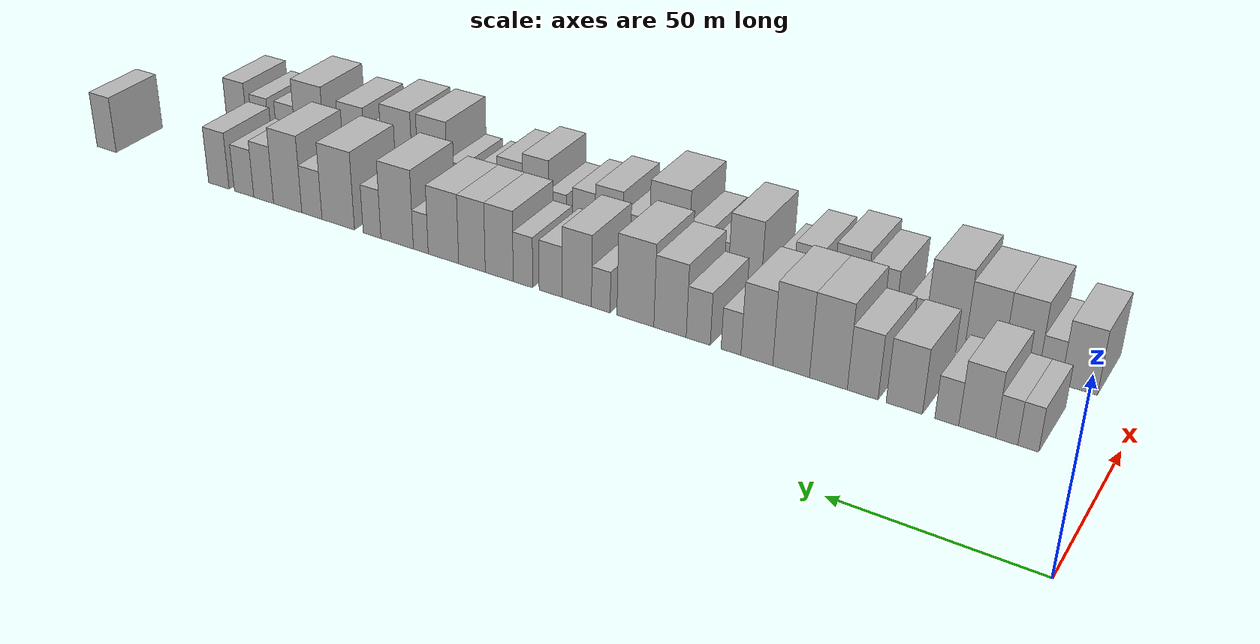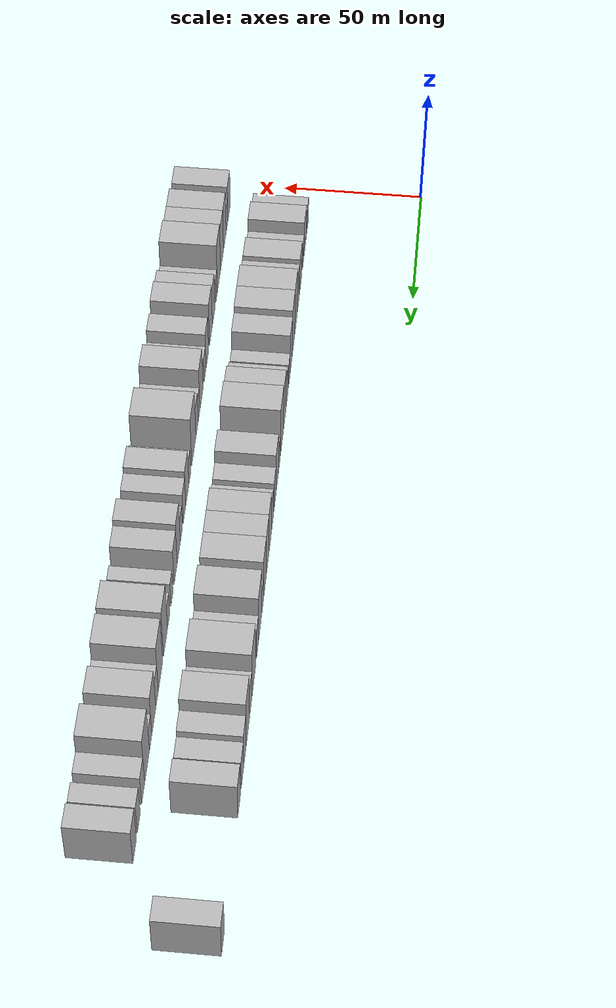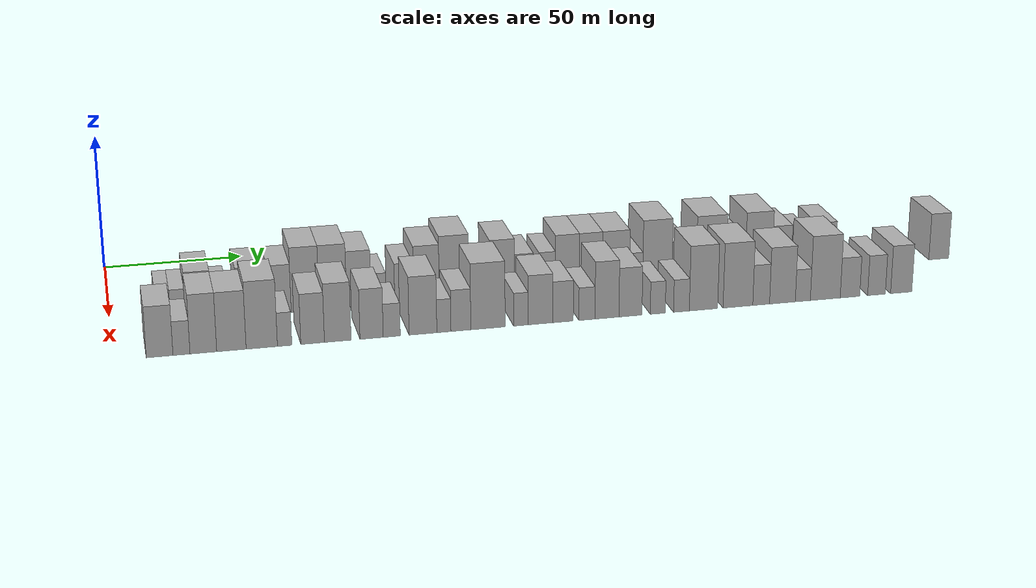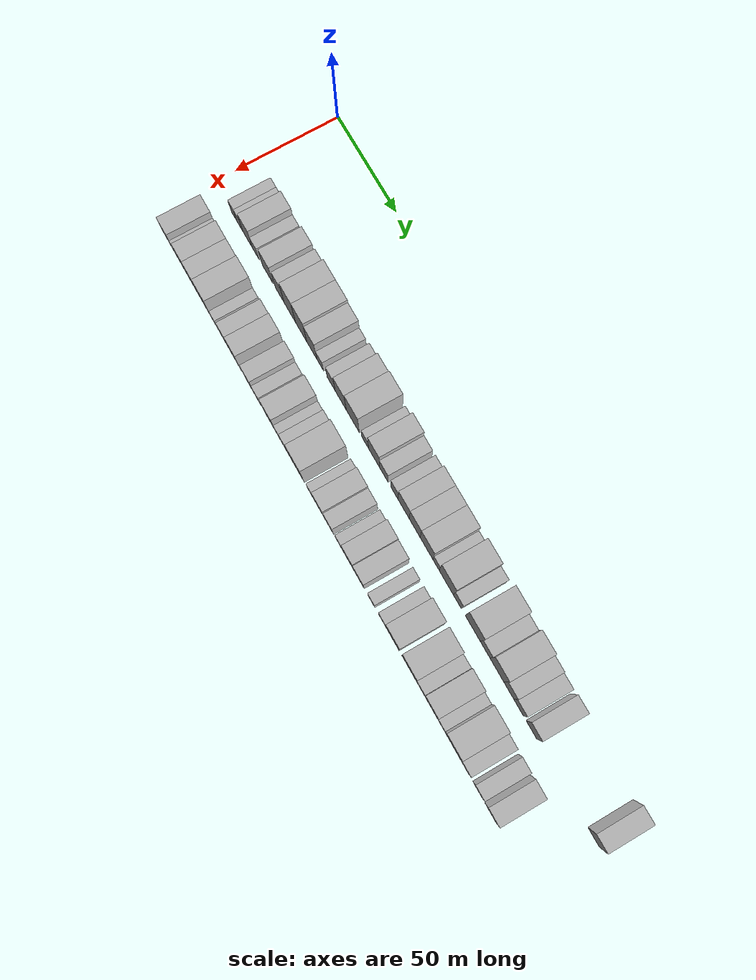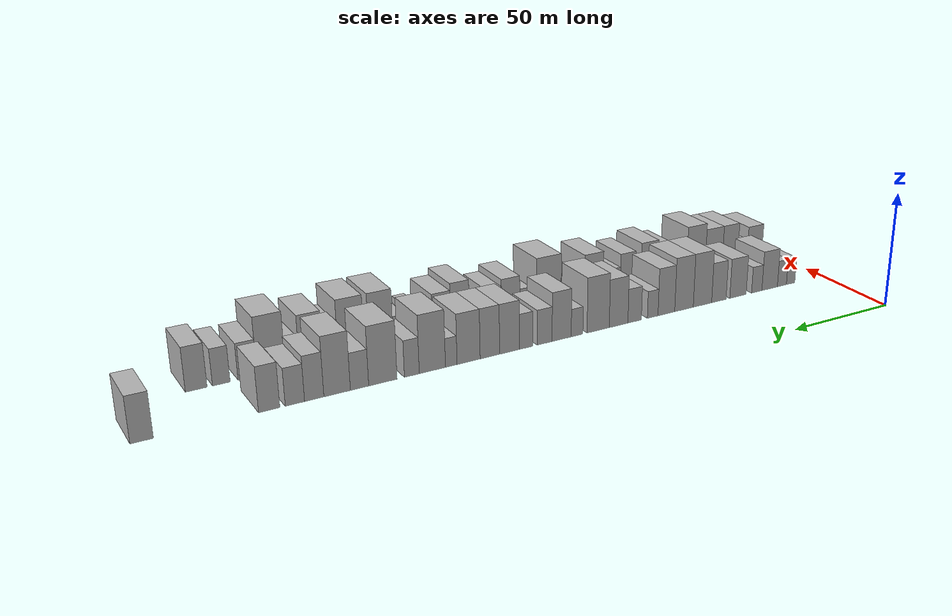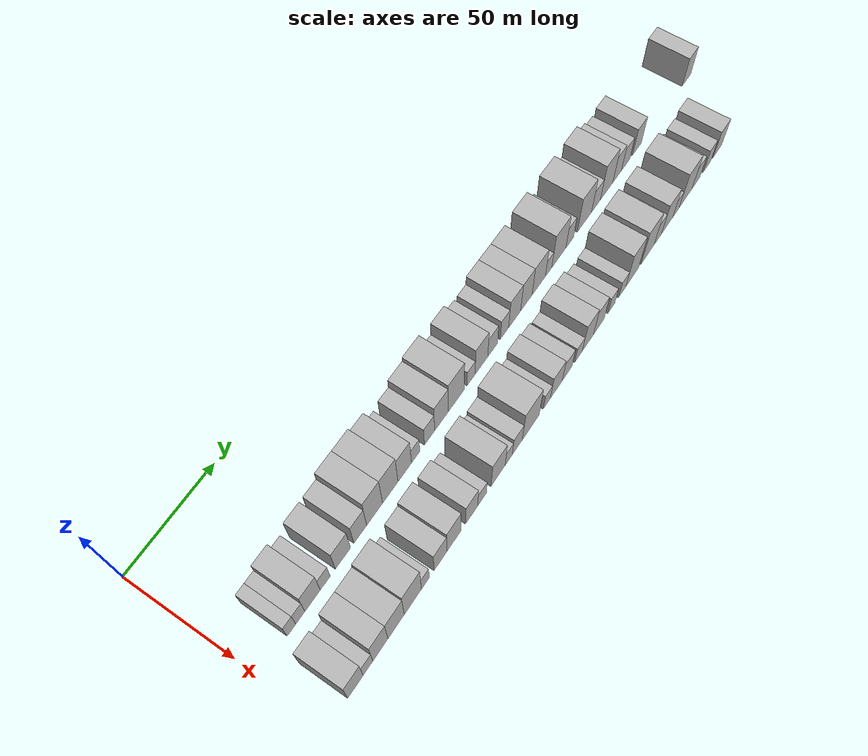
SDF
<sdf version="1.6">
 <world name="default">
  <model name="building_33">
   <static>1</static>
   <pose>50.0000 18.0976 0 0.000000 0.000000 0.000000</pose>
   <link name="link">
    <pose>0 0 6.00 0 0 0</pose>
    <collision name="collision"><geometry><box><size>20.0000 4.8309 12.0000</size></box></geometry></collision>
    <visual name="visual">
     <cast_shadows>0</cast_shadows>
     <geometry><box><size>20.0000 4.8309 12.0000</size></box></geometry>
     <material>
      <script>
       <uri>model://HANNAS_wall/materials/scripts</uri>
       <uri>model://HANNAS_wall/materials/textures</uri>
       <name>vrc/HANNAS_wall</name>
      </script>
     </material>
    </visual>
   </link>
  </model>
  <model name="building_34">
   <static>1</static>
   <pose>50.0000 23.0906 0 0.000000 0.000000 0.000000</pose>
   <link name="link">
    <pose>0 0 6.00 0 0 0</pose>
    <collision name="collision"><geometry><box><size>20.0000 5.1552 12.0000</size></box></geometry></collision>
    <visual name="visual">
     <cast_shadows>0</cast_shadows>
     <geometry><box><size>20.0000 5.1552 12.0000</size></box></geometry>
     <material>
      <script>
       <uri>model://HANNAS_wall/materials/scripts</uri>
       <uri>model://HANNAS_wall/materials/textures</uri>
       <name>vrc/HANNAS_wall</name>
      </script>
     </material>
    </visual>
   </link>
  </model>
  <model name="building_35">
   <static>1</static>
   <pose>50.0000 30.0514 0 0.000000 0.000000 0.000000</pose>
   <link name="link">
    <pose>0 0 9.00 0 0 0</pose>
    <collision name="collision"><geometry><box><size>20.0000 8.7663 18.0000</size></box></geometry></collision>
    <visual name="visual">
     <cast_shadows>0</cast_shadows>
     <geometry><box><size>20.0000 8.7663 18.0000</size></box></geometry>
     <material>
      <script>
       <uri>model://HANNAS_wall/materials/scripts</uri>
       <uri>model://HANNAS_wall/materials/textures</uri>
       <name>vrc/HANNAS_wall</name>
      </script>
     </material>
    </visual>
   </link>
  </model>
  <model name="building_36">
   <static>1</static>
   <pose>50.0000 37.3147 0 0.000000 0.000000 0.000000</pose>
   <link name="link">
    <pose>0 0 6.00 0 0 0</pose>
    <collision name="collision"><geometry><box><size>20.0000 5.7603 12.0000</size></box></geometry></collision>
    <visual name="visual">
     <cast_shadows>0</cast_shadows>
     <geometry><box><size>20.0000 5.7603 12.0000</size></box></geometry>
     <material>
      <script>
       <uri>model://HANNAS_wall/materials/scripts</uri>
       <uri>model://HANNAS_wall/materials/textures</uri>
       <name>vrc/HANNAS_wall</name>
      </script>
     </material>
    </visual>
   </link>
  </model>
  <model name="building_37">
   <static>1</static>
   <pose>50.0000 47.6836 0 0.000000 0.000000 0.000000</pose>
   <link name="link">
    <pose>0 0 9.00 0 0 0</pose>
    <collision name="collision"><geometry><box><size>20.0000 8.9776 18.0000</size></box></geometry></collision>
    <visual name="visual">
     <cast_shadows>0</cast_shadows>
     <geometry><box><size>20.0000 8.9776 18.0000</size></box></geometry>
     <material>
      <script>
       <uri>model://HANNAS_wall/materials/scripts</uri>
       <uri>model://HANNAS_wall/materials/textures</uri>
       <name>vrc/HANNAS_wall</name>
      </script>
     </material>
    </visual>
   </link>
  </model>
  <model name="building_38">
   <static>1</static>
   <pose>50.0000 58.0667 0 0.000000 0.000000 0.000000</pose>
   <link name="link">
    <pose>0 0 9.00 0 0 0</pose>
    <collision name="collision"><geometry><box><size>20.0000 7.7886 18.0000</size></box></geometry></collision>
    <visual name="visual">
     <cast_shadows>0</cast_shadows>
     <geometry><box><size>20.0000 7.7886 18.0000</size></box></geometry>
     <material>
      <script>
       <uri>model://HANNAS_wall/materials/scripts</uri>
       <uri>model://HANNAS_wall/materials/textures</uri>
       <name>vrc/HANNAS_wall</name>
      </script>
     </material>
    </visual>
   </link>
  </model>
  <model name="building_39">
   <static>1</static>
   <pose>50.0000 66.8419 0 0.000000 0.000000 0.000000</pose>
   <link name="link">
    <pose>0 0 12.00 0 0 0</pose>
    <collision name="collision"><geometry><box><size>20.0000 9.7617 24.0000</size></box></geometry></collision>
    <visual name="visual">
     <cast_shadows>0</cast_shadows>
     <geometry><box><size>20.0000 9.7617 24.0000</size></box></geometry>
     <material>
      <script>
       <uri>model://HANNAS_wall/materials/scripts</uri>
       <uri>model://HANNAS_wall/materials/textures</uri>
       <name>vrc/HANNAS_wall</name>
      </script>
     </material>
    </visual>
   </link>
  </model>
  <model name="building_40">
   <static>1</static>
   <pose>50.0000 76.5627 0 0.000000 0.000000 0.000000</pose>
   <link name="link">
    <pose>0 0 12.00 0 0 0</pose>
    <collision name="collision"><geometry><box><size>20.0000 9.6800 24.0000</size></box></geometry></collision>
    <visual name="visual">
     <cast_shadows>0</cast_shadows>
     <geometry><box><size>20.0000 9.6800 24.0000</size></box></geometry>
     <material>
      <script>
       <uri>model://HANNAS_wall/materials/scripts</uri>
       <uri>model://HANNAS_wall/materials/textures</uri>
       <name>vrc/HANNAS_wall</name>
      </script>
     </material>
    </visual>
   </link>
  </model>
  <model name="building_41">
   <static>1</static>
   <pose>50.0000 85.6968 0 0.000000 0.000000 0.000000</pose>
   <link name="link">
    <pose>0 0 10.50 0 0 0</pose>
    <collision name="collision"><geometry><box><size>20.0000 8.5882 21.0000</size></box></geometry></collision>
    <visual name="visual">
     <cast_shadows>0</cast_shadows>
     <geometry><box><size>20.0000 8.5882 21.0000</size></box></geometry>
     <material>
      <script>
       <uri>model://HANNAS_wall/materials/scripts</uri>
       <uri>model://HANNAS_wall/materials/textures</uri>
       <name>vrc/HANNAS_wall</name>
      </script>
     </material>
    </visual>
   </link>
  </model>
  <model name="building_42">
   <static>1</static>
   <pose>50.0000 92.6843 0 0.000000 0.000000 0.000000</pose>
   <link name="link">
    <pose>0 0 6.00 0 0 0</pose>
    <collision name="collision"><geometry><box><size>20.0000 5.3866 12.0000</size></box></geometry></collision>
    <visual name="visual">
     <cast_shadows>0</cast_shadows>
     <geometry><box><size>20.0000 5.3866 12.0000</size></box></geometry>
     <material>
      <script>
       <uri>model://HANNAS_wall/materials/scripts</uri>
       <uri>model://HANNAS_wall/materials/textures</uri>
       <name>vrc/HANNAS_wall</name>
      </script>
     </material>
    </visual>
   </link>
  </model>
  <model name="building_43">
   <static>1</static>
   <pose>50.0000 101.7371 0 0.000000 0.000000 0.000000</pose>
   <link name="link">
    <pose>0 0 7.50 0 0 0</pose>
    <collision name="collision"><geometry><box><size>20.0000 6.7191 15.0000</size></box></geometry></collision>
    <visual name="visual">
     <cast_shadows>0</cast_shadows>
     <geometry><box><size>20.0000 6.7191 15.0000</size></box></geometry>
     <material>
      <script>
       <uri>model://HANNAS_wall/materials/scripts</uri>
       <uri>model://HANNAS_wall/materials/textures</uri>
       <name>vrc/HANNAS_wall</name>
      </script>
     </material>
    </visual>
   </link>
  </model>
  <model name="building_44">
   <static>1</static>
   <pose>50.0000 109.6853 0 0.000000 0.000000 0.000000</pose>
   <link name="link">
    <pose>0 0 10.50 0 0 0</pose>
    <collision name="collision"><geometry><box><size>20.0000 9.1772 21.0000</size></box></geometry></collision>
    <visual name="visual">
     <cast_shadows>0</cast_shadows>
     <geometry><box><size>20.0000 9.1772 21.0000</size></box></geometry>
     <material>
      <script>
       <uri>model://HANNAS_wall/materials/scripts</uri>
       <uri>model://HANNAS_wall/materials/textures</uri>
       <name>vrc/HANNAS_wall</name>
      </script>
     </material>
    </visual>
   </link>
  </model>
  <model name="building_45">
   <static>1</static>
   <pose>50.0000 119.6319 0 0.000000 0.000000 0.000000</pose>
   <link name="link">
    <pose>0 0 12.00 0 0 0</pose>
    <collision name="collision"><geometry><box><size>20.0000 10.7161 24.0000</size></box></geometry></collision>
    <visual name="visual">
     <cast_shadows>0</cast_shadows>
     <geometry><box><size>20.0000 10.7161 24.0000</size></box></geometry>
     <material>
      <script>
       <uri>model://HANNAS_wall/materials/scripts</uri>
       <uri>model://HANNAS_wall/materials/textures</uri>
       <name>vrc/HANNAS_wall</name>
      </script>
     </material>
    </visual>
   </link>
  </model>
  <model name="building_46">
   <static>1</static>
   <pose>50.0000 129.7484 0 0.000000 0.000000 0.000000</pose>
   <link name="link">
    <pose>0 0 6.00 0 0 0</pose>
    <collision name="collision"><geometry><box><size>20.0000 5.5169 12.0000</size></box></geometry></collision>
    <visual name="visual">
     <cast_shadows>0</cast_shadows>
     <geometry><box><size>20.0000 5.5169 12.0000</size></box></geometry>
     <material>
      <script>
       <uri>model://HANNAS_wall/materials/scripts</uri>
       <uri>model://HANNAS_wall/materials/textures</uri>
       <name>vrc/HANNAS_wall</name>
      </script>
     </material>
    </visual>
   </link>
  </model>
  <model name="building_47">
   <static>1</static>
   <pose>50.0000 136.9675 0 0.000000 0.000000 0.000000</pose>
   <link name="link">
    <pose>0 0 10.50 0 0 0</pose>
    <collision name="collision"><geometry><box><size>20.0000 8.9213 21.0000</size></box></geometry></collision>
    <visual name="visual">
     <cast_shadows>0</cast_shadows>
     <geometry><box><size>20.0000 8.9213 21.0000</size></box></geometry>
     <material>
      <script>
       <uri>model://HANNAS_wall/materials/scripts</uri>
       <uri>model://HANNAS_wall/materials/textures</uri>
       <name>vrc/HANNAS_wall</name>
      </script>
     </material>
    </visual>
   </link>
  </model>
  <model name="building_48">
   <static>1</static>
   <pose>50.0000 144.8917 0 0.000000 0.000000 0.000000</pose>
   <link name="link">
    <pose>0 0 7.50 0 0 0</pose>
    <collision name="collision"><geometry><box><size>20.0000 6.9271 15.0000</size></box></geometry></collision>
    <visual name="visual">
     <cast_shadows>0</cast_shadows>
     <geometry><box><size>20.0000 6.9271 15.0000</size></box></geometry>
     <material>
      <script>
       <uri>model://HANNAS_wall/materials/scripts</uri>
       <uri>model://HANNAS_wall/materials/textures</uri>
       <name>vrc/HANNAS_wall</name>
      </script>
     </material>
    </visual>
   </link>
  </model>
  <model name="building_49">
   <static>1</static>
   <pose>50.0000 153.3730 0 0.000000 0.000000 0.000000</pose>
   <link name="link">
    <pose>0 0 7.50 0 0 0</pose>
    <collision name="collision"><geometry><box><size>20.0000 6.0354 15.0000</size></box></geometry></collision>
    <visual name="visual">
     <cast_shadows>0</cast_shadows>
     <geometry><box><size>20.0000 6.0354 15.0000</size></box></geometry>
     <material>
      <script>
       <uri>model://HANNAS_wall/materials/scripts</uri>
       <uri>model://HANNAS_wall/materials/textures</uri>
       <name>vrc/HANNAS_wall</name>
      </script>
     </material>
    </visual>
   </link>
  </model>
  <model name="building_50">
   <static>1</static>
   <pose>50.0000 160.8095 0 0.000000 0.000000 0.000000</pose>
   <link name="link">
    <pose>0 0 10.50 0 0 0</pose>
    <collision name="collision"><geometry><box><size>20.0000 8.8377 21.0000</size></box></geometry></collision>
    <visual name="visual">
     <cast_shadows>0</cast_shadows>
     <geometry><box><size>20.0000 8.8377 21.0000</size></box></geometry>
     <material>
      <script>
       <uri>model://HANNAS_wall/materials/scripts</uri>
       <uri>model://HANNAS_wall/materials/textures</uri>
       <name>vrc/HANNAS_wall</name>
      </script>
     </material>
    </visual>
   </link>
  </model>
  <model name="building_51">
   <static>1</static>
   <pose>50.0000 169.5152 0 0.000000 0.000000 0.000000</pose>
   <link name="link">
    <pose>0 0 10.50 0 0 0</pose>
    <collision name="collision"><geometry><box><size>20.0000 8.5737 21.0000</size></box></geometry></collision>
    <visual name="visual">
     <cast_shadows>0</cast_shadows>
     <geometry><box><size>20.0000 8.5737 21.0000</size></box></geometry>
     <material>
      <script>
       <uri>model://HANNAS_wall/materials/scripts</uri>
       <uri>model://HANNAS_wall/materials/textures</uri>
       <name>vrc/HANNAS_wall</name>
      </script>
     </material>
    </visual>
   </link>
  </model>
  <model name="building_52">
   <static>1</static>
   <pose>50.0000 178.7952 0 0.000000 0.000000 0.000000</pose>
   <link name="link">
    <pose>0 0 10.50 0 0 0</pose>
    <collision name="collision"><geometry><box><size>20.0000 9.9862 21.0000</size></box></geometry></collision>
    <visual name="visual">
     <cast_shadows>0</cast_shadows>
     <geometry><box><size>20.0000 9.9862 21.0000</size></box></geometry>
     <material>
      <script>
       <uri>model://HANNAS_wall/materials/scripts</uri>
       <uri>model://HANNAS_wall/materials/textures</uri>
       <name>vrc/HANNAS_wall</name>
      </script>
     </material>
    </visual>
   </link>
  </model>
  <model name="building_53">
   <static>1</static>
   <pose>50.0000 186.2557 0 0.000000 0.000000 0.000000</pose>
   <link name="link">
    <pose>0 0 6.00 0 0 0</pose>
    <collision name="collision"><geometry><box><size>20.0000 4.9349 12.0000</size></box></geometry></collision>
    <visual name="visual">
     <cast_shadows>0</cast_shadows>
     <geometry><box><size>20.0000 4.9349 12.0000</size></box></geometry>
     <material>
      <script>
       <uri>model://HANNAS_wall/materials/scripts</uri>
       <uri>model://HANNAS_wall/materials/textures</uri>
       <name>vrc/HANNAS_wall</name>
      </script>
     </material>
    </visual>
   </link>
  </model>
  <model name="building_54">
   <static>1</static>
   <pose>50.0000 194.2151 0 0.000000 0.000000 0.000000</pose>
   <link name="link">
    <pose>0 0 12.00 0 0 0</pose>
    <collision name="collision"><geometry><box><size>20.0000 10.9838 24.0000</size></box></geometry></collision>
    <visual name="visual">
     <cast_shadows>0</cast_shadows>
     <geometry><box><size>20.0000 10.9838 24.0000</size></box></geometry>
     <material>
      <script>
       <uri>model://HANNAS_wall/materials/scripts</uri>
       <uri>model://HANNAS_wall/materials/textures</uri>
       <name>vrc/HANNAS_wall</name>
      </script>
     </material>
    </visual>
   </link>
  </model>
  <model name="building_55">
   <static>1</static>
   <pose>50.0000 202.7680 0 0.000000 0.000000 0.000000</pose>
   <link name="link">
    <pose>0 0 7.50 0 0 0</pose>
    <collision name="collision"><geometry><box><size>20.0000 6.1220 15.0000</size></box></geometry></collision>
    <visual name="visual">
     <cast_shadows>0</cast_shadows>
     <geometry><box><size>20.0000 6.1220 15.0000</size></box></geometry>
     <material>
      <script>
       <uri>model://HANNAS_wall/materials/scripts</uri>
       <uri>model://HANNAS_wall/materials/textures</uri>
       <name>vrc/HANNAS_wall</name>
      </script>
     </material>
    </visual>
   </link>
  </model>
  <model name="building_56">
   <static>1</static>
   <pose>50.0000 214.5479 0 0.000000 0.000000 0.000000</pose>
   <link name="link">
    <pose>0 0 12.00 0 0 0</pose>
    <collision name="collision"><geometry><box><size>20.0000 11.4379 24.0000</size></box></geometry></collision>
    <visual name="visual">
     <cast_shadows>0</cast_shadows>
     <geometry><box><size>20.0000 11.4379 24.0000</size></box></geometry>
     <material>
      <script>
       <uri>model://HANNAS_wall/materials/scripts</uri>
       <uri>model://HANNAS_wall/materials/textures</uri>
       <name>vrc/HANNAS_wall</name>
      </script>
     </material>
    </visual>
   </link>
  </model>
  <model name="building_57">
   <static>1</static>
   <pose>50.0000 223.8794 0 0.000000 0.000000 0.000000</pose>
   <link name="link">
    <pose>0 0 7.50 0 0 0</pose>
    <collision name="collision"><geometry><box><size>20.0000 7.2250 15.0000</size></box></geometry></collision>
    <visual name="visual">
     <cast_shadows>0</cast_shadows>
     <geometry><box><size>20.0000 7.2250 15.0000</size></box></geometry>
     <material>
      <script>
       <uri>model://HANNAS_wall/materials/scripts</uri>
       <uri>model://HANNAS_wall/materials/textures</uri>
       <name>vrc/HANNAS_wall</name>
      </script>
     </material>
    </visual>
   </link>
  </model>
  <model name="building_58">
   <static>1</static>
   <pose>50.0000 232.6430 0 0.000000 0.000000 0.000000</pose>
   <link name="link">
    <pose>0 0 12.00 0 0 0</pose>
    <collision name="collision"><geometry><box><size>20.0000 10.3021 24.0000</size></box></geometry></collision>
    <visual name="visual">
     <cast_shadows>0</cast_shadows>
     <geometry><box><size>20.0000 10.3021 24.0000</size></box></geometry>
     <material>
      <script>
       <uri>model://HANNAS_wall/materials/scripts</uri>
       <uri>model://HANNAS_wall/materials/textures</uri>
       <name>vrc/HANNAS_wall</name>
      </script>
     </material>
    </visual>
   </link>
  </model>
  <model name="building_59">
   <static>1</static>
   <pose>50.0000 241.4697 0 0.000000 0.000000 0.000000</pose>
   <link name="link">
    <pose>0 0 9.00 0 0 0</pose>
    <collision name="collision"><geometry><box><size>20.0000 7.3514 18.0000</size></box></geometry></collision>
    <visual name="visual">
     <cast_shadows>0</cast_shadows>
     <geometry><box><size>20.0000 7.3514 18.0000</size></box></geometry>
     <material>
      <script>
       <uri>model://HANNAS_wall/materials/scripts</uri>
       <uri>model://HANNAS_wall/materials/textures</uri>
       <name>vrc/HANNAS_wall</name>
      </script>
     </material>
    </visual>
   </link>
  </model>
  <model name="building_60">
   <static>1</static>
   <pose>50.0000 248.7825 0 0.000000 0.000000 0.000000</pose>
   <link name="link">
    <pose>0 0 7.50 0 0 0</pose>
    <collision name="collision"><geometry><box><size>20.0000 7.2742 15.0000</size></box></geometry></collision>
    <visual name="visual">
     <cast_shadows>0</cast_shadows>
     <geometry><box><size>20.0000 7.2742 15.0000</size></box></geometry>
     <material>
      <script>
       <uri>model://HANNAS_wall/materials/scripts</uri>
       <uri>model://HANNAS_wall/materials/textures</uri>
       <name>vrc/HANNAS_wall</name>
      </script>
     </material>
    </visual>
   </link>
  </model>
  <model name="building_61">
   <static>1</static>
   <pose>50.0000 258.3505 0 0.000000 0.000000 0.000000</pose>
   <link name="link">
    <pose>0 0 9.00 0 0 0</pose>
    <collision name="collision"><geometry><box><size>20.0000 7.8619 18.0000</size></box></geometry></collision>
    <visual name="visual">
     <cast_shadows>0</cast_shadows>
     <geometry><box><size>20.0000 7.8619 18.0000</size></box></geometry>
     <material>
      <script>
       <uri>model://HANNAS_wall/materials/scripts</uri>
       <uri>model://HANNAS_wall/materials/textures</uri>
       <name>vrc/HANNAS_wall</name>
      </script>
     </material>
    </visual>
   </link>
  </model>
  <model name="building_62">
   <static>1</static>
   <pose>50.0000 303.1234 0 0.000000 0.000000 0.000000</pose>
   <link name="link">
    <pose>0 0 9.00 0 0 0</pose>
    <collision name="collision"><geometry><box><size>20.0000 7.8946 18.0000</size></box></geometry></collision>
    <visual name="visual">
     <cast_shadows>0</cast_shadows>
     <geometry><box><size>20.0000 7.8946 18.0000</size></box></geometry>
     <material>
      <script>
       <uri>model://HANNAS_wall/materials/scripts</uri>
       <uri>model://HANNAS_wall/materials/textures</uri>
       <name>vrc/HANNAS_wall</name>
      </script>
     </material>
    </visual>
   </link>
  </model>
  <model name="building_91">
   <static>1</static>
   <pose>79.0000 15.1706 0 0.000000 0.000000 0.000000</pose>
   <link name="link">
    <pose>0 0 9.00 0 0 0</pose>
    <collision name="collision"><geometry><box><size>20.0000 8.7217 18.0000</size></box></geometry></collision>
    <visual name="visual">
     <cast_shadows>0</cast_shadows>
     <geometry><box><size>20.0000 8.7217 18.0000</size></box></geometry>
     <material>
      <script>
       <uri>model://HANNAS_wall/materials/scripts</uri>
       <uri>model://HANNAS_wall/materials/textures</uri>
       <name>vrc/HANNAS_wall</name>
      </script>
     </material>
    </visual>
   </link>
  </model>
  <model name="building_92">
   <static>1</static>
   <pose>79.0000 22.3177 0 0.000000 0.000000 0.000000</pose>
   <link name="link">
    <pose>0 0 6.00 0 0 0</pose>
    <collision name="collision"><geometry><box><size>20.0000 5.5725 12.0000</size></box></geometry></collision>
    <visual name="visual">
     <cast_shadows>0</cast_shadows>
     <geometry><box><size>20.0000 5.5725 12.0000</size></box></geometry>
     <material>
      <script>
       <uri>model://HANNAS_wall/materials/scripts</uri>
       <uri>model://HANNAS_wall/materials/textures</uri>
       <name>vrc/HANNAS_wall</name>
      </script>
     </material>
    </visual>
   </link>
  </model>
  <model name="building_93">
   <static>1</static>
   <pose>79.0000 29.4959 0 0.000000 0.000000 0.000000</pose>
   <link name="link">
    <pose>0 0 10.50 0 0 0</pose>
    <collision name="collision"><geometry><box><size>20.0000 8.7840 21.0000</size></box></geometry></collision>
    <visual name="visual">
     <cast_shadows>0</cast_shadows>
     <geometry><box><size>20.0000 8.7840 21.0000</size></box></geometry>
     <material>
      <script>
       <uri>model://HANNAS_wall/materials/scripts</uri>
       <uri>model://HANNAS_wall/materials/textures</uri>
       <name>vrc/HANNAS_wall</name>
      </script>
     </material>
    </visual>
   </link>
  </model>
  <model name="building_94">
   <static>1</static>
   <pose>79.0000 38.7556 0 0.000000 0.000000 0.000000</pose>
   <link name="link">
    <pose>0 0 10.50 0 0 0</pose>
    <collision name="collision"><geometry><box><size>20.0000 9.7354 21.0000</size></box></geometry></collision>
    <visual name="visual">
     <cast_shadows>0</cast_shadows>
     <geometry><box><size>20.0000 9.7354 21.0000</size></box></geometry>
     <material>
      <script>
       <uri>model://HANNAS_wall/materials/scripts</uri>
       <uri>model://HANNAS_wall/materials/textures</uri>
       <name>vrc/HANNAS_wall</name>
      </script>
     </material>
    </visual>
   </link>
  </model>
  <model name="building_95">
   <static>1</static>
   <pose>79.0000 48.8243 0 0.000000 0.000000 0.000000</pose>
   <link name="link">
    <pose>0 0 12.00 0 0 0</pose>
    <collision name="collision"><geometry><box><size>20.0000 10.4018 24.0000</size></box></geometry></collision>
    <visual name="visual">
     <cast_shadows>0</cast_shadows>
     <geometry><box><size>20.0000 10.4018 24.0000</size></box></geometry>
     <material>
      <script>
       <uri>model://HANNAS_wall/materials/scripts</uri>
       <uri>model://HANNAS_wall/materials/textures</uri>
       <name>vrc/HANNAS_wall</name>
      </script>
     </material>
    </visual>
   </link>
  </model>
  <model name="building_96">
   <static>1</static>
   <pose>79.0000 56.4356 0 0.000000 0.000000 0.000000</pose>
   <link name="link">
    <pose>0 0 6.00 0 0 0</pose>
    <collision name="collision"><geometry><box><size>20.0000 4.8209 12.0000</size></box></geometry></collision>
    <visual name="visual">
     <cast_shadows>0</cast_shadows>
     <geometry><box><size>20.0000 4.8209 12.0000</size></box></geometry>
     <material>
      <script>
       <uri>model://HANNAS_wall/materials/scripts</uri>
       <uri>model://HANNAS_wall/materials/textures</uri>
       <name>vrc/HANNAS_wall</name>
      </script>
     </material>
    </visual>
   </link>
  </model>
  <model name="building_97">
   <static>1</static>
   <pose>79.0000 65.8192 0 0.000000 0.000000 0.000000</pose>
   <link name="link">
    <pose>0 0 9.00 0 0 0</pose>
    <collision name="collision"><geometry><box><size>20.0000 7.9463 18.0000</size></box></geometry></collision>
    <visual name="visual">
     <cast_shadows>0</cast_shadows>
     <geometry><box><size>20.0000 7.9463 18.0000</size></box></geometry>
     <material>
      <script>
       <uri>model://HANNAS_wall/materials/scripts</uri>
       <uri>model://HANNAS_wall/materials/textures</uri>
       <name>vrc/HANNAS_wall</name>
      </script>
     </material>
    </visual>
   </link>
  </model>
  <model name="building_98">
   <static>1</static>
   <pose>79.0000 74.3004 0 0.000000 0.000000 0.000000</pose>
   <link name="link">
    <pose>0 0 10.50 0 0 0</pose>
    <collision name="collision"><geometry><box><size>20.0000 9.0162 21.0000</size></box></geometry></collision>
    <visual name="visual">
     <cast_shadows>0</cast_shadows>
     <geometry><box><size>20.0000 9.0162 21.0000</size></box></geometry>
     <material>
      <script>
       <uri>model://HANNAS_wall/materials/scripts</uri>
       <uri>model://HANNAS_wall/materials/textures</uri>
       <name>vrc/HANNAS_wall</name>
      </script>
     </material>
    </visual>
   </link>
  </model>
  <model name="building_99">
   <static>1</static>
   <pose>79.0000 85.7675 0 0.000000 0.000000 0.000000</pose>
   <link name="link">
    <pose>0 0 9.00 0 0 0</pose>
    <collision name="collision"><geometry><box><size>20.0000 7.9180 18.0000</size></box></geometry></collision>
    <visual name="visual">
     <cast_shadows>0</cast_shadows>
     <geometry><box><size>20.0000 7.9180 18.0000</size></box></geometry>
     <material>
      <script>
       <uri>model://HANNAS_wall/materials/scripts</uri>
       <uri>model://HANNAS_wall/materials/textures</uri>
       <name>vrc/HANNAS_wall</name>
      </script>
     </material>
    </visual>
   </link>
  </model>
  <model name="building_100">
   <static>1</static>
   <pose>79.0000 92.6414 0 0.000000 0.000000 0.000000</pose>
   <link name="link">
    <pose>0 0 6.00 0 0 0</pose>
    <collision name="collision"><geometry><box><size>20.0000 5.8299 12.0000</size></box></geometry></collision>
    <visual name="visual">
     <cast_shadows>0</cast_shadows>
     <geometry><box><size>20.0000 5.8299 12.0000</size></box></geometry>
     <material>
      <script>
       <uri>model://HANNAS_wall/materials/scripts</uri>
       <uri>model://HANNAS_wall/materials/textures</uri>
       <name>vrc/HANNAS_wall</name>
      </script>
     </material>
    </visual>
   </link>
  </model>
  <model name="building_101">
   <static>1</static>
   <pose>79.0000 103.3294 0 0.000000 0.000000 0.000000</pose>
   <link name="link">
    <pose>0 0 10.50 0 0 0</pose>
    <collision name="collision"><geometry><box><size>20.0000 9.5462 21.0000</size></box></geometry></collision>
    <visual name="visual">
     <cast_shadows>0</cast_shadows>
     <geometry><box><size>20.0000 9.5462 21.0000</size></box></geometry>
     <material>
      <script>
       <uri>model://HANNAS_wall/materials/scripts</uri>
       <uri>model://HANNAS_wall/materials/textures</uri>
       <name>vrc/HANNAS_wall</name>
      </script>
     </material>
    </visual>
   </link>
  </model>
  <model name="building_102">
   <static>1</static>
   <pose>79.0000 110.5382 0 0.000000 0.000000 0.000000</pose>
   <link name="link">
    <pose>0 0 6.00 0 0 0</pose>
    <collision name="collision"><geometry><box><size>20.0000 4.8712 12.0000</size></box></geometry></collision>
    <visual name="visual">
     <cast_shadows>0</cast_shadows>
     <geometry><box><size>20.0000 4.8712 12.0000</size></box></geometry>
     <material>
      <script>
       <uri>model://HANNAS_wall/materials/scripts</uri>
       <uri>model://HANNAS_wall/materials/textures</uri>
       <name>vrc/HANNAS_wall</name>
      </script>
     </material>
    </visual>
   </link>
  </model>
  <model name="building_103">
   <static>1</static>
   <pose>79.0000 116.4047 0 0.000000 0.000000 0.000000</pose>
   <link name="link">
    <pose>0 0 7.50 0 0 0</pose>
    <collision name="collision"><geometry><box><size>20.0000 6.8619 15.0000</size></box></geometry></collision>
    <visual name="visual">
     <cast_shadows>0</cast_shadows>
     <geometry><box><size>20.0000 6.8619 15.0000</size></box></geometry>
     <material>
      <script>
       <uri>model://HANNAS_wall/materials/scripts</uri>
       <uri>model://HANNAS_wall/materials/textures</uri>
       <name>vrc/HANNAS_wall</name>
      </script>
     </material>
    </visual>
   </link>
  </model>
  <model name="building_104">
   <static>1</static>
   <pose>79.0000 125.8145 0 0.000000 0.000000 0.000000</pose>
   <link name="link">
    <pose>0 0 12.00 0 0 0</pose>
    <collision name="collision"><geometry><box><size>20.0000 11.9579 24.0000</size></box></geometry></collision>
    <visual name="visual">
     <cast_shadows>0</cast_shadows>
     <geometry><box><size>20.0000 11.9579 24.0000</size></box></geometry>
     <material>
      <script>
       <uri>model://HANNAS_wall/materials/scripts</uri>
       <uri>model://HANNAS_wall/materials/textures</uri>
       <name>vrc/HANNAS_wall</name>
      </script>
     </material>
    </visual>
   </link>
  </model>
  <model name="building_105">
   <static>1</static>
   <pose>79.0000 137.3399 0 0.000000 0.000000 0.000000</pose>
   <link name="link">
    <pose>0 0 6.00 0 0 0</pose>
    <collision name="collision"><geometry><box><size>20.0000 5.0929 12.0000</size></box></geometry></collision>
    <visual name="visual">
     <cast_shadows>0</cast_shadows>
     <geometry><box><size>20.0000 5.0929 12.0000</size></box></geometry>
     <material>
      <script>
       <uri>model://HANNAS_wall/materials/scripts</uri>
       <uri>model://HANNAS_wall/materials/textures</uri>
       <name>vrc/HANNAS_wall</name>
      </script>
     </material>
    </visual>
   </link>
  </model>
  <model name="building_106">
   <static>1</static>
   <pose>79.0000 144.2445 0 0.000000 0.000000 0.000000</pose>
   <link name="link">
    <pose>0 0 9.00 0 0 0</pose>
    <collision name="collision"><geometry><box><size>20.0000 8.7162 18.0000</size></box></geometry></collision>
    <visual name="visual">
     <cast_shadows>0</cast_shadows>
     <geometry><box><size>20.0000 8.7162 18.0000</size></box></geometry>
     <material>
      <script>
       <uri>model://HANNAS_wall/materials/scripts</uri>
       <uri>model://HANNAS_wall/materials/textures</uri>
       <name>vrc/HANNAS_wall</name>
      </script>
     </material>
    </visual>
   </link>
  </model>
  <model name="building_107">
   <static>1</static>
   <pose>79.0000 152.2016 0 0.000000 0.000000 0.000000</pose>
   <link name="link">
    <pose>0 0 7.50 0 0 0</pose>
    <collision name="collision"><geometry><box><size>20.0000 7.1981 15.0000</size></box></geometry></collision>
    <visual name="visual">
     <cast_shadows>0</cast_shadows>
     <geometry><box><size>20.0000 7.1981 15.0000</size></box></geometry>
     <material>
      <script>
       <uri>model://HANNAS_wall/materials/scripts</uri>
       <uri>model://HANNAS_wall/materials/textures</uri>
       <name>vrc/HANNAS_wall</name>
      </script>
     </material>
    </visual>
   </link>
  </model>
  <model name="building_108">
   <static>1</static>
   <pose>79.0000 160.6562 0 0.000000 0.000000 0.000000</pose>
   <link name="link">
    <pose>0 0 6.00 0 0 0</pose>
    <collision name="collision"><geometry><box><size>20.0000 5.7111 12.0000</size></box></geometry></collision>
    <visual name="visual">
     <cast_shadows>0</cast_shadows>
     <geometry><box><size>20.0000 5.7111 12.0000</size></box></geometry>
     <material>
      <script>
       <uri>model://HANNAS_wall/materials/scripts</uri>
       <uri>model://HANNAS_wall/materials/textures</uri>
       <name>vrc/HANNAS_wall</name>
      </script>
     </material>
    </visual>
   </link>
  </model>
  <model name="building_109">
   <static>1</static>
   <pose>79.0000 167.7835 0 0.000000 0.000000 0.000000</pose>
   <link name="link">
    <pose>0 0 10.50 0 0 0</pose>
    <collision name="collision"><geometry><box><size>20.0000 8.5435 21.0000</size></box></geometry></collision>
    <visual name="visual">
     <cast_shadows>0</cast_shadows>
     <geometry><box><size>20.0000 8.5435 21.0000</size></box></geometry>
     <material>
      <script>
       <uri>model://HANNAS_wall/materials/scripts</uri>
       <uri>model://HANNAS_wall/materials/textures</uri>
       <name>vrc/HANNAS_wall</name>
      </script>
     </material>
    </visual>
   </link>
  </model>
  <model name="building_110">
   <static>1</static>
   <pose>79.0000 176.1927 0 0.000000 0.000000 0.000000</pose>
   <link name="link">
    <pose>0 0 9.00 0 0 0</pose>
    <collision name="collision"><geometry><box><size>20.0000 8.2749 18.0000</size></box></geometry></collision>
    <visual name="visual">
     <cast_shadows>0</cast_shadows>
     <geometry><box><size>20.0000 8.2749 18.0000</size></box></geometry>
     <material>
      <script>
       <uri>model://HANNAS_wall/materials/scripts</uri>
       <uri>model://HANNAS_wall/materials/textures</uri>
       <name>vrc/HANNAS_wall</name>
      </script>
     </material>
    </visual>
   </link>
  </model>
  <model name="building_111">
   <static>1</static>
   <pose>79.0000 186.0341 0 0.000000 0.000000 0.000000</pose>
   <link name="link">
    <pose>0 0 6.00 0 0 0</pose>
    <collision name="collision"><geometry><box><size>20.0000 5.4079 12.0000</size></box></geometry></collision>
    <visual name="visual">
     <cast_shadows>0</cast_shadows>
     <geometry><box><size>20.0000 5.4079 12.0000</size></box></geometry>
     <material>
      <script>
       <uri>model://HANNAS_wall/materials/scripts</uri>
       <uri>model://HANNAS_wall/materials/textures</uri>
       <name>vrc/HANNAS_wall</name>
      </script>
     </material>
    </visual>
   </link>
  </model>
  <model name="building_112">
   <static>1</static>
   <pose>79.0000 194.5986 0 0.000000 0.000000 0.000000</pose>
   <link name="link">
    <pose>0 0 6.00 0 0 0</pose>
    <collision name="collision"><geometry><box><size>20.0000 5.7211 12.0000</size></box></geometry></collision>
    <visual name="visual">
     <cast_shadows>0</cast_shadows>
     <geometry><box><size>20.0000 5.7211 12.0000</size></box></geometry>
     <material>
      <script>
       <uri>model://HANNAS_wall/materials/scripts</uri>
       <uri>model://HANNAS_wall/materials/textures</uri>
       <name>vrc/HANNAS_wall</name>
      </script>
     </material>
    </visual>
   </link>
  </model>
  <model name="building_113">
   <static>1</static>
   <pose>79.0000 202.6183 0 0.000000 0.000000 0.000000</pose>
   <link name="link">
    <pose>0 0 12.00 0 0 0</pose>
    <collision name="collision"><geometry><box><size>20.0000 10.3183 24.0000</size></box></geometry></collision>
    <visual name="visual">
     <cast_shadows>0</cast_shadows>
     <geometry><box><size>20.0000 10.3183 24.0000</size></box></geometry>
     <material>
      <script>
       <uri>model://HANNAS_wall/materials/scripts</uri>
       <uri>model://HANNAS_wall/materials/textures</uri>
       <name>vrc/HANNAS_wall</name>
      </script>
     </material>
    </visual>
   </link>
  </model>
  <model name="building_114">
   <static>1</static>
   <pose>79.0000 215.2339 0 0.000000 0.000000 0.000000</pose>
   <link name="link">
    <pose>0 0 12.00 0 0 0</pose>
    <collision name="collision"><geometry><box><size>20.0000 10.9129 24.0000</size></box></geometry></collision>
    <visual name="visual">
     <cast_shadows>0</cast_shadows>
     <geometry><box><size>20.0000 10.9129 24.0000</size></box></geometry>
     <material>
      <script>
       <uri>model://HANNAS_wall/materials/scripts</uri>
       <uri>model://HANNAS_wall/materials/textures</uri>
       <name>vrc/HANNAS_wall</name>
      </script>
     </material>
    </visual>
   </link>
  </model>
  <model name="building_115">
   <static>1</static>
   <pose>79.0000 223.7847 0 0.000000 0.000000 0.000000</pose>
   <link name="link">
    <pose>0 0 7.50 0 0 0</pose>
    <collision name="collision"><geometry><box><size>20.0000 6.1885 15.0000</size></box></geometry></collision>
    <visual name="visual">
     <cast_shadows>0</cast_shadows>
     <geometry><box><size>20.0000 6.1885 15.0000</size></box></geometry>
     <material>
      <script>
       <uri>model://HANNAS_wall/materials/scripts</uri>
       <uri>model://HANNAS_wall/materials/textures</uri>
       <name>vrc/HANNAS_wall</name>
      </script>
     </material>
    </visual>
   </link>
  </model>
  <model name="building_116">
   <static>1</static>
   <pose>79.0000 231.6523 0 0.000000 0.000000 0.000000</pose>
   <link name="link">
    <pose>0 0 10.50 0 0 0</pose>
    <collision name="collision"><geometry><box><size>20.0000 9.5468 21.0000</size></box></geometry></collision>
    <visual name="visual">
     <cast_shadows>0</cast_shadows>
     <geometry><box><size>20.0000 9.5468 21.0000</size></box></geometry>
     <material>
      <script>
       <uri>model://HANNAS_wall/materials/scripts</uri>
       <uri>model://HANNAS_wall/materials/textures</uri>
       <name>vrc/HANNAS_wall</name>
      </script>
     </material>
    </visual>
   </link>
  </model>
  <model name="building_117">
   <static>1</static>
   <pose>79.0000 239.2265 0 0.000000 0.000000 0.000000</pose>
   <link name="link">
    <pose>0 0 6.00 0 0 0</pose>
    <collision name="collision"><geometry><box><size>20.0000 5.6018 12.0000</size></box></geometry></collision>
    <visual name="visual">
     <cast_shadows>0</cast_shadows>
     <geometry><box><size>20.0000 5.6018 12.0000</size></box></geometry>
     <material>
      <script>
       <uri>model://HANNAS_wall/materials/scripts</uri>
       <uri>model://HANNAS_wall/materials/textures</uri>
       <name>vrc/HANNAS_wall</name>
      </script>
     </material>
    </visual>
   </link>
  </model>
  <model name="building_118">
   <static>1</static>
   <pose>79.0000 247.6178 0 0.000000 0.000000 0.000000</pose>
   <link name="link">
    <pose>0 0 12.00 0 0 0</pose>
    <collision name="collision"><geometry><box><size>20.0000 11.1808 24.0000</size></box></geometry></collision>
    <visual name="visual">
     <cast_shadows>0</cast_shadows>
     <geometry><box><size>20.0000 11.1808 24.0000</size></box></geometry>
     <material>
      <script>
       <uri>model://HANNAS_wall/materials/scripts</uri>
       <uri>model://HANNAS_wall/materials/textures</uri>
       <name>vrc/HANNAS_wall</name>
      </script>
     </material>
    </visual>
   </link>
  </model>
  <model name="building_119">
   <static>1</static>
   <pose>79.0000 256.8691 0 0.000000 0.000000 0.000000</pose>
   <link name="link">
    <pose>0 0 7.50 0 0 0</pose>
    <collision name="collision"><geometry><box><size>20.0000 7.3217 15.0000</size></box></geometry></collision>
    <visual name="visual">
     <cast_shadows>0</cast_shadows>
     <geometry><box><size>20.0000 7.3217 15.0000</size></box></geometry>
     <material>
      <script>
       <uri>model://HANNAS_wall/materials/scripts</uri>
       <uri>model://HANNAS_wall/materials/textures</uri>
       <name>vrc/HANNAS_wall</name>
      </script>
     </material>
    </visual>
   </link>
  </model>
  <model name="building_120">
   <static>1</static>
   <pose>79.0000 266.8694 0 0.000000 0.000000 0.000000</pose>
   <link name="link">
    <pose>0 0 7.50 0 0 0</pose>
    <collision name="collision"><geometry><box><size>20.0000 6.6789 15.0000</size></box></geometry></collision>
    <visual name="visual">
     <cast_shadows>0</cast_shadows>
     <geometry><box><size>20.0000 6.6789 15.0000</size></box></geometry>
     <material>
      <script>
       <uri>model://HANNAS_wall/materials/scripts</uri>
       <uri>model://HANNAS_wall/materials/textures</uri>
       <name>vrc/HANNAS_wall</name>
      </script>
     </material>
    </visual>
   </link>
  </model>
  <model name="building_121">
   <static>1</static>
   <pose>79.0000 276.2452 0 0.000000 0.000000 0.000000</pose>
   <link name="link">
    <pose>0 0 9.00 0 0 0</pose>
    <collision name="collision"><geometry><box><size>20.0000 8.0727 18.0000</size></box></geometry></collision>
    <visual name="visual">
     <cast_shadows>0</cast_shadows>
     <geometry><box><size>20.0000 8.0727 18.0000</size></box></geometry>
     <material>
      <script>
       <uri>model://HANNAS_wall/materials/scripts</uri>
       <uri>model://HANNAS_wall/materials/textures</uri>
       <name>vrc/HANNAS_wall</name>
      </script>
     </material>
    </visual>
   </link>
  </model>
 </world>
</sdf>
